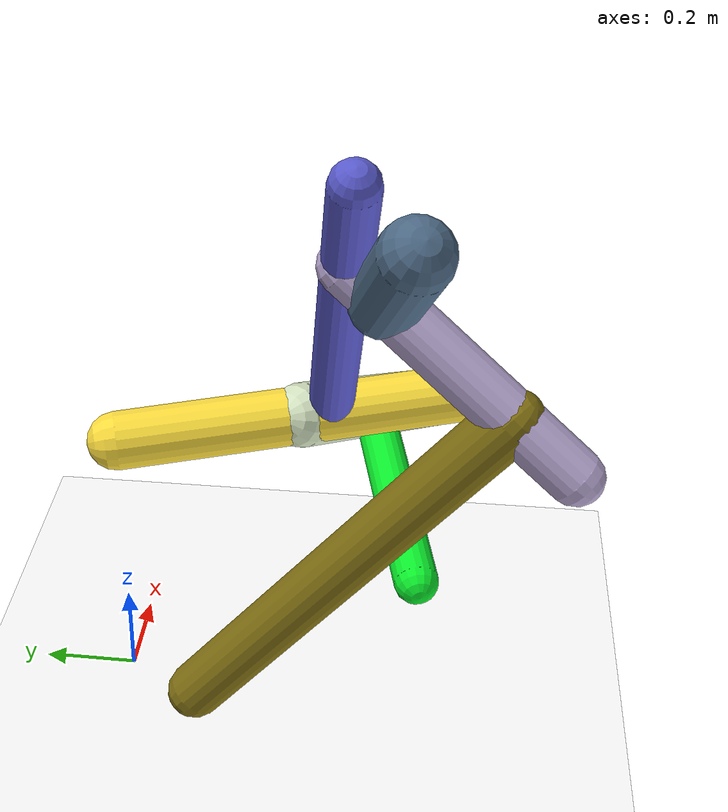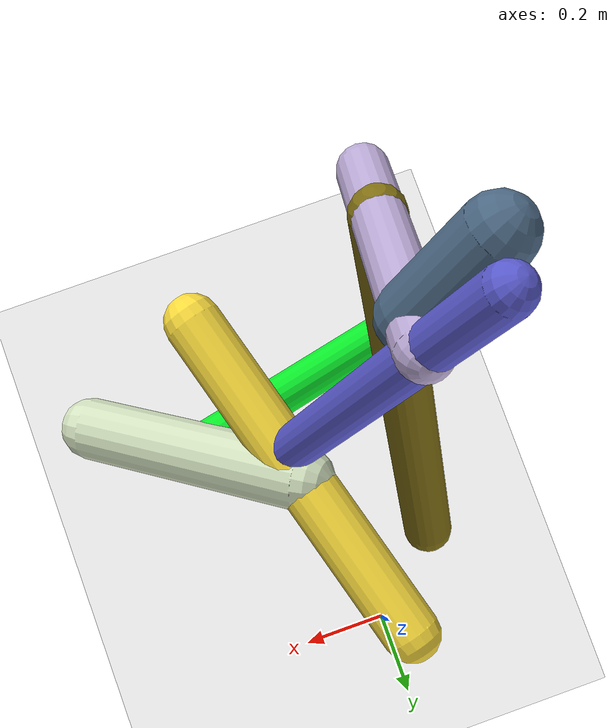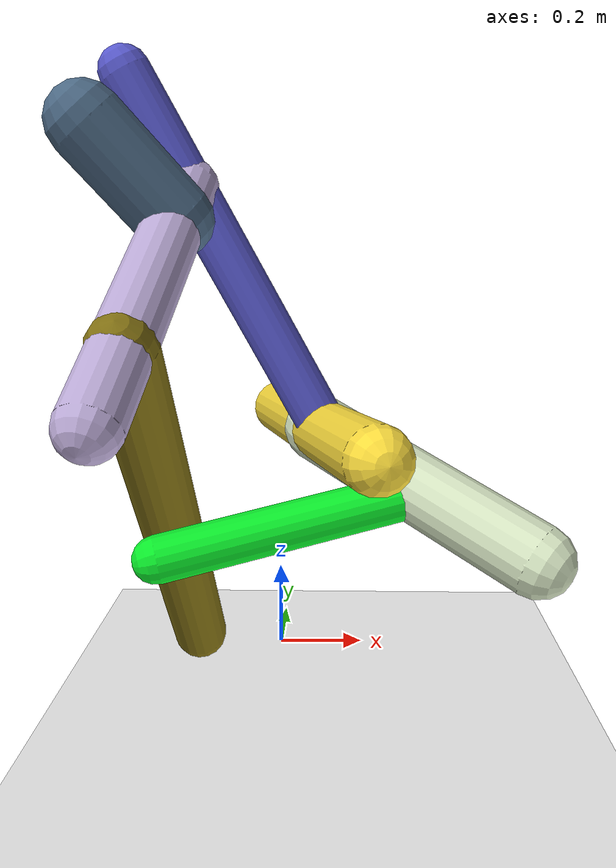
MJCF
<mujoco model="morphology">
  <option timestep="0.01"/>
  <default>
    <default class="/"/>
    <default class="0/"/>
    <default class="0/1/"/>
    <default class="0/1/2/"/>
    <default class="0/1/2/3/"/>
    <default class="0/1/2/4/"/>
    <default class="0/5/"/>
    <default class="0/5/6/"/>
  </default>
  <asset>
    <texture name="texplane" type="2d" builtin="checker" rgb1="0.10000000000000001 0.20000000000000001 0.29999999999999999" rgb2="0.20000000000000001 0.29999999999999999 0.40000000000000002" width="300" height="300"/>
    <material name="MatPlane" class="/" texture="texplane" texrepeat="20 20" specular="1" shininess="1" reflectance="0.5"/>
  </asset>
  <worldbody>
    <light name="//unnamed_light_0" class="/" directional="true" pos="0 0 1.5" dir="0 0 -1.3" cutoff="100" exponent="1" diffuse="1 1 1" specular="0.10000000000000001 0.10000000000000001 0.10000000000000001"/>
    <geom name="ground" class="/" type="plane" size="15 15 0.5" material="MatPlane" rgba="1 1 1 1"/>
    <site name="body" class="/" size="9.9999999999999995e-07 9.9999999999999995e-07 9.9999999999999995e-07" pos="0 0 0.60570940971374509"/>
    <body pos="0 0 0.60570940971374509" name="0/">
      <freejoint name="0/"/>
      <geom name="0/geom" class="0/" type="capsule" contype="1" conaffinity="1" condim="3" size="0.060561886930883317" rgba="0.9960110378910807 0.87265777710633219 0.24152945409017279 1" friction="0.59999999999999998 0.10000000000000001 0.10000000000000001" fromto="0 0 0 0.20577369640501875 -0.74210670500389264 0.046011148265583945"/>
      <site name="0/end0" class="0/" size="0.0050000000000000001" pos="0.20577369640501875 -0.74210670500389264 0.046011148265583945"/>
      <site name="0/attach1" class="0/" size="9.9999999999999995e-07 9.9999999999999995e-07 9.9999999999999995e-07" pos="0.11874048108220654 -0.42822823667925408 0.026550457981989777"/>
      <body pos="0.11874048108220654 -0.42822823667925408 0.026550457981989777" name="0/1/">
        <joint name="0/1/joint/" class="0/" type="hinge" axis="0 1 0" limited="true" range="-37.578969896651067 37.578969896651067"/>
        <geom name="0/1/geom" class="0/1/" type="capsule" contype="1" conaffinity="1" condim="3" size="0.046930994484894017" rgba="0.35483688029680216 0.35811715074125072 0.81228499046883074 1" friction="0.59999999999999998 0.10000000000000001 0.10000000000000001" fromto="0 0 0 -0.35433020024744144 -0.058037338200978672 0.65677144285667266"/>
        <site name="0/1/end1" class="0/1/" size="0.0050000000000000001" pos="-0.35433020024744144 -0.058037338200978672 0.65677144285667266"/>
        <site name="0/1/attach2" class="0/1/" size="9.9999999999999995e-07 9.9999999999999995e-07 9.9999999999999995e-07" pos="-0.24861286914649727 -0.040721420747355859 0.46081827817119914"/>
        <body pos="-0.24861286914649727 -0.040721420747355859 0.46081827817119914" name="0/1/2/">
          <joint name="0/1/2/joint/" class="0/1/" type="hinge" axis="-5.5511151231257827e-17 0.99611829961159892 0.088024616891508783" limited="true" range="-46.0343561284337 46.0343561284337"/>
          <geom name="0/1/2/geom" class="0/1/2/" type="capsule" contype="1" conaffinity="1" condim="3" size="0.054391899147976389" rgba="0.73785789920644584 0.67163099482439803 0.84357809012024176 1" friction="0.59999999999999998 0.10000000000000001 0.10000000000000001" fromto="0 0 0 -0.083619503877925161 -0.42978213101813878 -0.3578390538673053"/>
          <site name="0/1/2/end2" class="0/1/2/" size="0.0050000000000000001" pos="-0.083619503877925161 -0.42978213101813878 -0.3578390538673053"/>
          <site name="0/1/2/attach3" class="0/1/2/" size="9.9999999999999995e-07 9.9999999999999995e-07 9.9999999999999995e-07" pos="-0.060257517381265294 -0.30970770010535165 -0.25786439775561731"/>
          <body pos="-0.060257517381265294 -0.30970770010535165 -0.25786439775561731" name="0/1/2/3/">
            <geom name="0/1/2/3/geom" class="0/1/2/3/" type="capsule" contype="1" conaffinity="1" condim="3" size="0.058801982645555695" rgba="0.50938254307287245 0.44220843974772717 0.074002598513092321 1" friction="0.59999999999999998 0.10000000000000001 0.10000000000000001" fromto="0 0 0 0.011956937551198199 0.60422231503794688 -0.73521373022170411"/>
            <site name="0/1/2/3/end3" class="0/1/2/3/" size="0.0050000000000000001" pos="0.011956937551198199 0.60422231503794688 -0.73521373022170411"/>
          </body>
          <site name="0/1/2/attach4" class="0/1/2/" size="9.9999999999999995e-07 9.9999999999999995e-07 9.9999999999999995e-07" pos="-0.013695984744426327 -0.070393738743592282 -0.058610228420888484"/>
          <body pos="-0.013695984744426327 -0.070393738743592282 -0.058610228420888484" name="0/1/2/4/">
            <joint name="0/1/2/4/joint/" class="0/1/2/" type="hinge" axis="0.98900580190155796 -0.11364269832900115 -0.094619558874263709" limited="true" range="-39.902753032529176 39.902753032529176"/>
            <geom name="0/1/2/4/geom" class="0/1/2/4/" type="capsule" contype="1" conaffinity="1" condim="3" size="0.068481130741105567" rgba="0.30064822518927137 0.41370044965972064 0.52337404075024141 1" friction="0.59999999999999998 0.10000000000000001 0.10000000000000001" fromto="0 0 0 -0.13774499867937551 -0.051882049811730946 0.15874909872146137"/>
            <site name="0/1/2/4/end4" class="0/1/2/4/" size="0.0050000000000000001" pos="-0.13774499867937551 -0.051882049811730946 0.15874909872146137"/>
          </body>
        </body>
      </body>
      <site name="0/attach5" class="0/" size="9.9999999999999995e-07 9.9999999999999995e-07 9.9999999999999995e-07" pos="0.10226256528625446 -0.36880192510346932 0.022865984018402719"/>
      <body pos="0.10226256528625446 -0.36880192510346932 0.022865984018402719" name="0/5/">
        <geom name="0/5/geom" class="0/5/" type="capsule" contype="1" conaffinity="1" condim="3" size="0.068123556538676369" rgba="0.84386024884657529 0.90172631834743688 0.76559460688654346 1" friction="0.59999999999999998 0.10000000000000001 0.10000000000000001" fromto="0 0 0 0.38939249245243568 -0.2698724036902822 -0.18109191151697424"/>
        <site name="0/5/end5" class="0/5/" size="0.0050000000000000001" pos="0.38939249245243568 -0.2698724036902822 -0.18109191151697424"/>
        <site name="0/5/attach6" class="0/5/" size="9.9999999999999995e-07 9.9999999999999995e-07 9.9999999999999995e-07" pos="0.19982465116760165 -0.13849049473844188 -0.092930985444137082"/>
        <body pos="0.19982465116760165 -0.13849049473844188 -0.092930985444137082" name="0/5/6/">
          <joint name="0/5/6/joint/" class="0/5/" type="hinge" axis="0.64077398332868396 0.63750350471306771 0.42778263612218648" limited="true" range="-36.986953290441299 36.986953290441299"/>
          <geom name="0/5/6/geom" class="0/5/6/" type="capsule" contype="1" conaffinity="1" condim="3" size="0.044534947853139585" rgba="0.044209282969172814 0.94130343118440452 0.17296905833842646 1" friction="0.59999999999999998 0.10000000000000001 0.10000000000000001" fromto="0 0 0 -0.48316974147871267 -0.11773210127654299 -0.095486216402980051"/>
          <site name="0/5/6/end6" class="0/5/6/" size="0.0050000000000000001" pos="-0.48316974147871267 -0.11773210127654299 -0.095486216402980051"/>
        </body>
      </body>
      <camera name="0/iso" class="0/" mode="trackcom" pos="-2.2999999999999998 -2.2999999999999998 1" xyaxes="0.45000000000000001 -0.45000000000000001 0 0.29999999999999999 0.14999999999999999 0.93999999999999995"/>
    </body>
  </worldbody>
  <actuator>
    <motor name="0/1/motor" class="0/1/" ctrllimited="true" ctrlrange="-1 1" gear="62" joint="0/1/joint/"/>
    <motor name="0/1/2/motor" class="0/1/2/" ctrllimited="true" ctrlrange="-1 1" gear="86" joint="0/1/2/joint/"/>
    <motor name="0/1/2/4/motor" class="0/1/2/4/" ctrllimited="true" ctrlrange="-1 1" gear="93" joint="0/1/2/4/joint/"/>
    <motor name="0/5/6/motor" class="0/5/6/" ctrllimited="true" ctrlrange="-1 1" gear="93" joint="0/5/6/joint/"/>
  </actuator>
  <sensor>
    <subtreelinvel name="velocity" body="0/"/>
  </sensor>
</mujoco>
